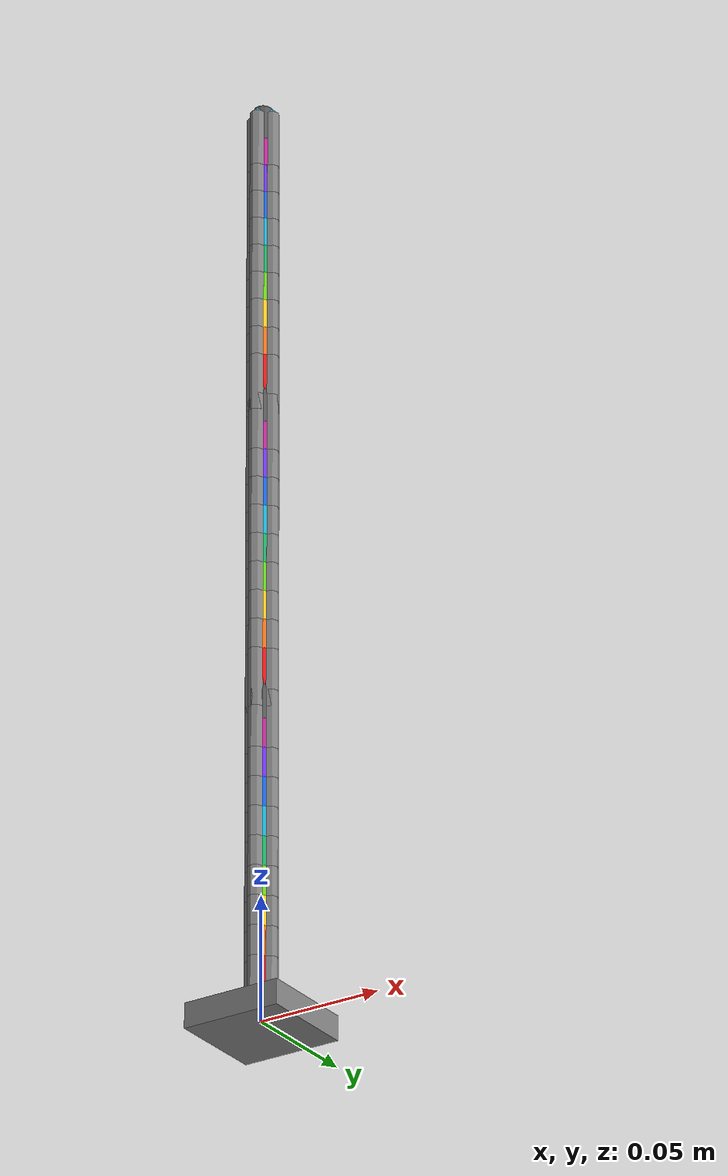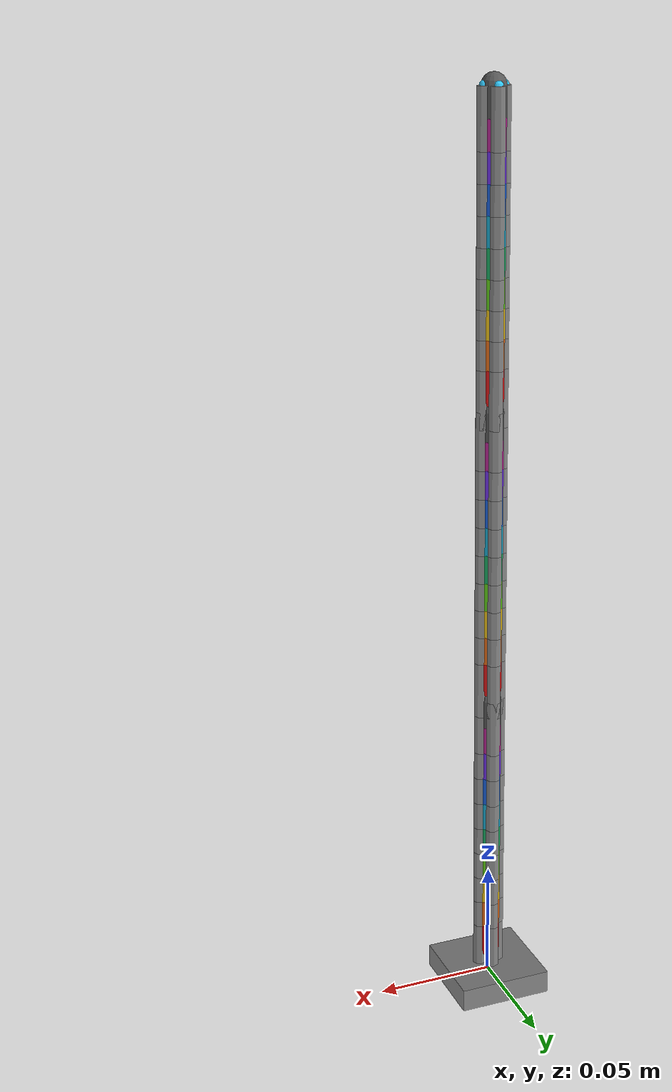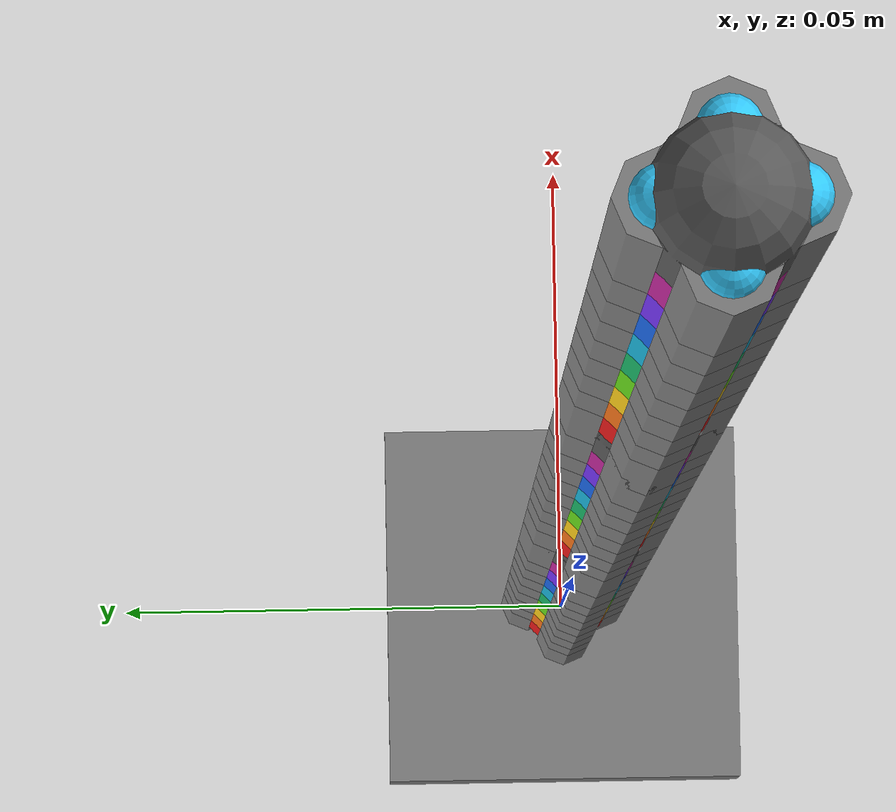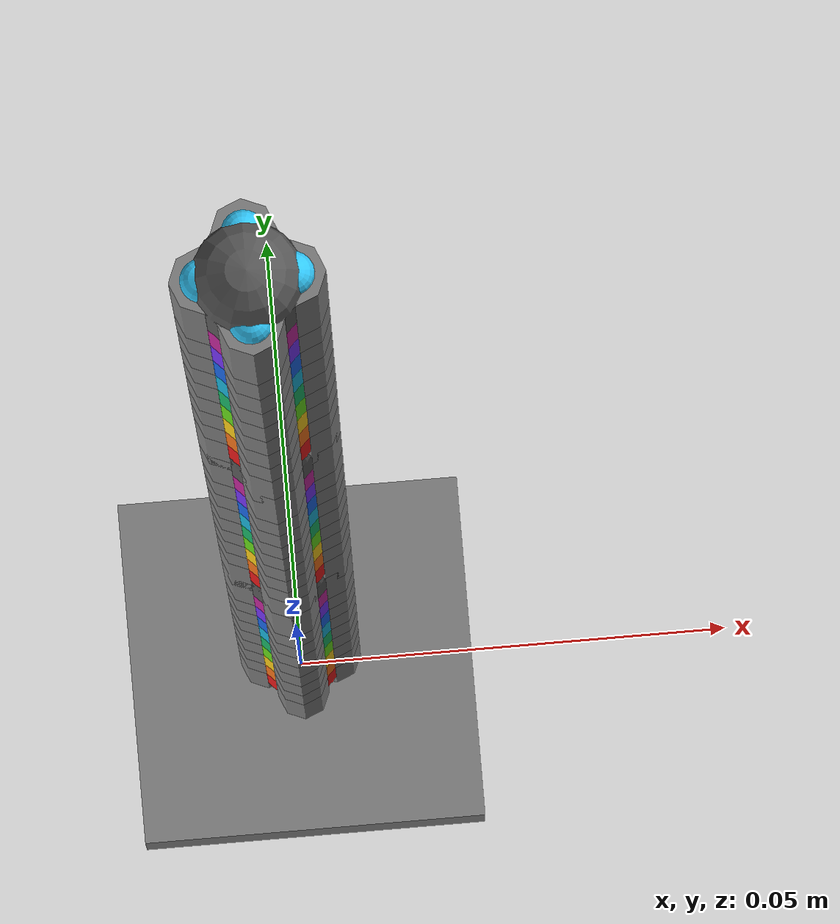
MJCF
<!-- Example File -->

<?xml version="1.0"?>
<mujoco model="continuum_sers_shell_sites">

  <compiler angle="degree" coordinate="local"/>
  <option integrator="Euler" timestep="0.001"/>

  <default>
    <joint limited="true" range="-4 4" damping="0.05" stiffness="0" armature="0.0001"/>
    <geom type="capsule" size="0.005" density="1000" friction="0.8 0.1 0.01" rgba="0.8 0.8 0.8 1"/>
    <site size="0.002" rgba="0.2 0.8 1 1"/>
    <tendon stiffness="0" damping="0" frictionloss="0.05"/>
    <position kp="5000" ctrlrange="-0.05 0.05"/>
  </default>

  <!-- spacing per vertebra interval -->
  <!-- d = 0.012 m; internal tendon offset r_in = 0.004 m -->

  <worldbody>
    <body name="base" pos="0 0 0">
      <geom type="box" size="0.02 0.02 0.005" rgba="0.5 0.5 0.5 1"/>

      <!-- ================= SEGMENT 1 ================= -->
      <body name="seg1_base" pos="0 0 0.000">
        <!-- Base internal anchors -->
        <site name="seg1_base_Ni" pos="0 0.004 0"/>
        <site name="seg1_base_Ei" pos="0.004 0 0"/>
        <site name="seg1_base_Si" pos="0 -0.004 0"/>
        <site name="seg1_base_Wi" pos="-0.004 0 0"/>

        <!-- Vertebra chain V1..V10; add 4 waypoint sites at the DISTAL end of V1..V8 -->
        <body name="seg1_v1" pos="0 0 0.012">
          <geom name="seg1_v1_geom" fromto="0 0 0  0 0 0.012" rgba="0.90 0.10 0.10 1"/>
          <joint name="seg1_j1_pitch" type="hinge" axis="1 0 0"/>
          <site name="seg1_v1_Ni" pos="0 0.004 0.012"/>
          <site name="seg1_v1_Ei" pos="0.004 0 0.012"/>
          <site name="seg1_v1_Si" pos="0 -0.004 0.012"/>
          <site name="seg1_v1_Wi" pos="-0.004 0 0.012"/>

          <body name="seg1_v2" pos="0 0 0.012">
            <geom name="seg1_v2_geom" fromto="0 0 0  0 0 0.012" rgba="0.95 0.45 0.10 1"/>
            <joint name="seg1_j2_yaw" type="hinge" axis="0 1 0"/>
            <site name="seg1_v2_Ni" pos="0 0.004 0.012"/>
            <site name="seg1_v2_Ei" pos="0.004 0 0.012"/>
            <site name="seg1_v2_Si" pos="0 -0.004 0.012"/>
            <site name="seg1_v2_Wi" pos="-0.004 0 0.012"/>

            <body name="seg1_v3" pos="0 0 0.012">
              <geom name="seg1_v3_geom" fromto="0 0 0  0 0 0.012" rgba="0.98 0.80 0.10 1"/>
              <joint name="seg1_j3_pitch" type="hinge" axis="1 0 0"/>
              <site name="seg1_v3_Ni" pos="0 0.004 0.012"/>
              <site name="seg1_v3_Ei" pos="0.004 0 0.012"/>
              <site name="seg1_v3_Si" pos="0 -0.004 0.012"/>
              <site name="seg1_v3_Wi" pos="-0.004 0 0.012"/>

              <body name="seg1_v4" pos="0 0 0.012">
                <geom name="seg1_v4_geom" fromto="0 0 0  0 0 0.012" rgba="0.40 0.85 0.10 1"/>
                <joint name="seg1_j4_yaw" type="hinge" axis="0 1 0"/>
                <site name="seg1_v4_Ni" pos="0 0.004 0.012"/>
                <site name="seg1_v4_Ei" pos="0.004 0 0.012"/>
                <site name="seg1_v4_Si" pos="0 -0.004 0.012"/>
                <site name="seg1_v4_Wi" pos="-0.004 0 0.012"/>

                <body name="seg1_v5" pos="0 0 0.012">
                  <geom name="seg1_v5_geom" fromto="0 0 0  0 0 0.012" rgba="0.10 0.70 0.40 1"/>
                  <joint name="seg1_j5_pitch" type="hinge" axis="1 0 0"/>
                  <site name="seg1_v5_Ni" pos="0 0.004 0.012"/>
                  <site name="seg1_v5_Ei" pos="0.004 0 0.012"/>
                  <site name="seg1_v5_Si" pos="0 -0.004 0.012"/>
                  <site name="seg1_v5_Wi" pos="-0.004 0 0.012"/>

                  <body name="seg1_v6" pos="0 0 0.012">
                    <geom name="seg1_v6_geom" fromto="0 0 0  0 0 0.012" rgba="0.10 0.70 0.85 1"/>
                    <joint name="seg1_j6_yaw" type="hinge" axis="0 1 0"/>
                    <site name="seg1_v6_Ni" pos="0 0.004 0.012"/>
                    <site name="seg1_v6_Ei" pos="0.004 0 0.012"/>
                    <site name="seg1_v6_Si" pos="0 -0.004 0.012"/>
                    <site name="seg1_v6_Wi" pos="-0.004 0 0.012"/>

                    <body name="seg1_v7" pos="0 0 0.012">
                      <geom name="seg1_v7_geom" fromto="0 0 0  0 0 0.012" rgba="0.10 0.40 0.90 1"/>
                      <joint name="seg1_j7_pitch" type="hinge" axis="1 0 0"/>
                      <site name="seg1_v7_Ni" pos="0 0.004 0.012"/>
                      <site name="seg1_v7_Ei" pos="0.004 0 0.012"/>
                      <site name="seg1_v7_Si" pos="0 -0.004 0.012"/>
                      <site name="seg1_v7_Wi" pos="-0.004 0 0.012"/>

                      <body name="seg1_v8" pos="0 0 0.012">
                        <geom name="seg1_v8_geom" fromto="0 0 0  0 0 0.012" rgba="0.45 0.20 0.95 1"/>
                        <joint name="seg1_j8_yaw" type="hinge" axis="0 1 0"/>
                        <site name="seg1_v8_Ni" pos="0 0.004 0.012"/>
                        <site name="seg1_v8_Ei" pos="0.004 0 0.012"/>
                        <site name="seg1_v8_Si" pos="0 -0.004 0.012"/>
                        <site name="seg1_v8_Wi" pos="-0.004 0 0.012"/>

                        <body name="seg1_v9" pos="0 0 0.012">
                          <geom name="seg1_v9_geom" fromto="0 0 0  0 0 0.012" rgba="0.75 0.15 0.60 1"/>
                          <body name="seg1_v10" pos="0 0 0.012">
                            <geom name="seg1_v10_geom" fromto="0 0 0  0 0 0.012" rgba="0.35 0.35 0.35 1"/>
                            <site name="seg1_imu" pos="0 0 0.012"/>
                            <!-- internal tip anchors -->
                            <site name="seg1_tip_Ni" pos="0 0.004 0.012"/>
                            <site name="seg1_tip_Ei" pos="0.004 0 0.012"/>
                            <site name="seg1_tip_Si" pos="0 -0.004 0.012"/>
                            <site name="seg1_tip_Wi" pos="-0.004 0 0.012"/>

                            <!-- ================= SEGMENT 2 ================= -->
                            <body name="seg2_base" pos="0 0 0.005">
                              <site name="seg2_base_Ni" pos="0 0.004 0"/>
                              <site name="seg2_base_Ei" pos="0.004 0 0"/>
                              <site name="seg2_base_Si" pos="0 -0.004 0"/>
                              <site name="seg2_base_Wi" pos="-0.004 0 0"/>

                              <body name="seg2_v1" pos="0 0 0.012">
                                <geom name="seg2_v1_geom" fromto="0 0 0  0 0 0.012" rgba="0.90 0.10 0.10 1"/>
                                <joint name="seg2_j1_pitch" type="hinge" axis="1 0 0"/>
                                <site name="seg2_v1_Ni" pos="0 0.004 0.012"/>
                                <site name="seg2_v1_Ei" pos="0.004 0 0.012"/>
                                <site name="seg2_v1_Si" pos="0 -0.004 0.012"/>
                                <site name="seg2_v1_Wi" pos="-0.004 0 0.012"/>

                                <body name="seg2_v2" pos="0 0 0.012">
                                  <geom name="seg2_v2_geom" fromto="0 0 0  0 0 0.012" rgba="0.95 0.45 0.10 1"/>
                                  <joint name="seg2_j2_yaw" type="hinge" axis="0 1 0"/>
                                  <site name="seg2_v2_Ni" pos="0 0.004 0.012"/>
                                  <site name="seg2_v2_Ei" pos="0.004 0 0.012"/>
                                  <site name="seg2_v2_Si" pos="0 -0.004 0.012"/>
                                  <site name="seg2_v2_Wi" pos="-0.004 0 0.012"/>

                                  <body name="seg2_v3" pos="0 0 0.012">
                                    <geom name="seg2_v3_geom" fromto="0 0 0  0 0 0.012" rgba="0.98 0.80 0.10 1"/>
                                    <joint name="seg2_j3_pitch" type="hinge" axis="1 0 0"/>
                                    <site name="seg2_v3_Ni" pos="0 0.004 0.012"/>
                                    <site name="seg2_v3_Ei" pos="0.004 0 0.012"/>
                                    <site name="seg2_v3_Si" pos="0 -0.004 0.012"/>
                                    <site name="seg2_v3_Wi" pos="-0.004 0 0.012"/>

                                    <body name="seg2_v4" pos="0 0 0.012">
                                      <geom name="seg2_v4_geom" fromto="0 0 0  0 0 0.012" rgba="0.40 0.85 0.10 1"/>
                                      <joint name="seg2_j4_yaw" type="hinge" axis="0 1 0"/>
                                      <site name="seg2_v4_Ni" pos="0 0.004 0.012"/>
                                      <site name="seg2_v4_Ei" pos="0.004 0 0.012"/>
                                      <site name="seg2_v4_Si" pos="0 -0.004 0.012"/>
                                      <site name="seg2_v4_Wi" pos="-0.004 0 0.012"/>

                                      <body name="seg2_v5" pos="0 0 0.012">
                                        <geom name="seg2_v5_geom" fromto="0 0 0  0 0 0.012" rgba="0.10 0.70 0.40 1"/>
                                        <joint name="seg2_j5_pitch" type="hinge" axis="1 0 0"/>
                                        <site name="seg2_v5_Ni" pos="0 0.004 0.012"/>
                                        <site name="seg2_v5_Ei" pos="0.004 0 0.012"/>
                                        <site name="seg2_v5_Si" pos="0 -0.004 0.012"/>
                                        <site name="seg2_v5_Wi" pos="-0.004 0 0.012"/>

                                        <body name="seg2_v6" pos="0 0 0.012">
                                          <geom name="seg2_v6_geom" fromto="0 0 0  0 0 0.012" rgba="0.10 0.70 0.85 1"/>
                                          <joint name="seg2_j6_yaw" type="hinge" axis="0 1 0"/>
                                          <site name="seg2_v6_Ni" pos="0 0.004 0.012"/>
                                          <site name="seg2_v6_Ei" pos="0.004 0 0.012"/>
                                          <site name="seg2_v6_Si" pos="0 -0.004 0.012"/>
                                          <site name="seg2_v6_Wi" pos="-0.004 0 0.012"/>

                                          <body name="seg2_v7" pos="0 0 0.012">
                                            <geom name="seg2_v7_geom" fromto="0 0 0  0 0 0.012" rgba="0.10 0.40 0.90 1"/>
                                            <joint name="seg2_j7_pitch" type="hinge" axis="1 0 0"/>
                                            <site name="seg2_v7_Ni" pos="0 0.004 0.012"/>
                                            <site name="seg2_v7_Ei" pos="0.004 0 0.012"/>
                                            <site name="seg2_v7_Si" pos="0 -0.004 0.012"/>
                                            <site name="seg2_v7_Wi" pos="-0.004 0 0.012"/>

                                            <body name="seg2_v8" pos="0 0 0.012">
                                              <geom name="seg2_v8_geom" fromto="0 0 0  0 0 0.012" rgba="0.45 0.20 0.95 1"/>
                                              <joint name="seg2_j8_yaw" type="hinge" axis="0 1 0"/>
                                              <site name="seg2_v8_Ni" pos="0 0.004 0.012"/>
                                              <site name="seg2_v8_Ei" pos="0.004 0 0.012"/>
                                              <site name="seg2_v8_Si" pos="0 -0.004 0.012"/>
                                              <site name="seg2_v8_Wi" pos="-0.004 0 0.012"/>

                                              <body name="seg2_v9" pos="0 0 0.012">
                                                <geom name="seg2_v9_geom" fromto="0 0 0  0 0 0.012" rgba="0.75 0.15 0.60 1"/>
                                                <body name="seg2_v10" pos="0 0 0.012">
                                                  <geom name="seg2_v10_geom" fromto="0 0 0  0 0 0.012" rgba="0.35 0.35 0.35 1"/>
                                                  <site name="seg2_imu" pos="0 0 0.012"/>
                                                  <site name="seg2_tip_Ni" pos="0 0.004 0.012"/>
                                                  <site name="seg2_tip_Ei" pos="0.004 0 0.012"/>
                                                  <site name="seg2_tip_Si" pos="0 -0.004 0.012"/>
                                                  <site name="seg2_tip_Wi" pos="-0.004 0 0.012"/>

                                                  <!-- ================= SEGMENT 3 ================= -->
                                                  <body name="seg3_base" pos="0 0 0.005">
                                                    <site name="seg3_base_Ni" pos="0 0.004 0"/>
                                                    <site name="seg3_base_Ei" pos="0.004 0 0"/>
                                                    <site name="seg3_base_Si" pos="0 -0.004 0"/>
                                                    <site name="seg3_base_Wi" pos="-0.004 0 0"/>

                                                    <body name="seg3_v1" pos="0 0 0.012">
                                                      <geom name="seg3_v1_geom" fromto="0 0 0  0 0 0.012" rgba="0.90 0.10 0.10 1"/>
                                                      <joint name="seg3_j1_pitch" type="hinge" axis="1 0 0"/>
                                                      <site name="seg3_v1_Ni" pos="0 0.004 0.012"/>
                                                      <site name="seg3_v1_Ei" pos="0.004 0 0.012"/>
                                                      <site name="seg3_v1_Si" pos="0 -0.004 0.012"/>
                                                      <site name="seg3_v1_Wi" pos="-0.004 0 0.012"/>

                                                      <body name="seg3_v2" pos="0 0 0.012">
                                                        <geom name="seg3_v2_geom" fromto="0 0 0  0 0 0.012" rgba="0.95 0.45 0.10 1"/>
                                                        <joint name="seg3_j2_yaw" type="hinge" axis="0 1 0"/>
                                                        <site name="seg3_v2_Ni" pos="0 0.004 0.012"/>
                                                        <site name="seg3_v2_Ei" pos="0.004 0 0.012"/>
                                                        <site name="seg3_v2_Si" pos="0 -0.004 0.012"/>
                                                        <site name="seg3_v2_Wi" pos="-0.004 0 0.012"/>

                                                        <body name="seg3_v3" pos="0 0 0.012">
                                                          <geom name="seg3_v3_geom" fromto="0 0 0  0 0 0.012" rgba="0.98 0.80 0.10 1"/>
                                                          <joint name="seg3_j3_pitch" type="hinge" axis="1 0 0"/>
                                                          <site name="seg3_v3_Ni" pos="0 0.004 0.012"/>
                                                          <site name="seg3_v3_Ei" pos="0.004 0 0.012"/>
                                                          <site name="seg3_v3_Si" pos="0 -0.004 0.012"/>
                                                          <site name="seg3_v3_Wi" pos="-0.004 0 0.012"/>

                                                          <body name="seg3_v4" pos="0 0 0.012">
                                                            <geom name="seg3_v4_geom" fromto="0 0 0  0 0 0.012" rgba="0.40 0.85 0.10 1"/>
                                                            <joint name="seg3_j4_yaw" type="hinge" axis="0 1 0"/>
                                                            <site name="seg3_v4_Ni" pos="0 0.004 0.012"/>
                                                            <site name="seg3_v4_Ei" pos="0.004 0 0.012"/>
                                                            <site name="seg3_v4_Si" pos="0 -0.004 0.012"/>
                                                            <site name="seg3_v4_Wi" pos="-0.004 0 0.012"/>

                                                            <body name="seg3_v5" pos="0 0 0.012">
                                                              <geom name="seg3_v5_geom" fromto="0 0 0  0 0 0.012" rgba="0.10 0.70 0.40 1"/>
                                                              <joint name="seg3_j5_pitch" type="hinge" axis="1 0 0"/>
                                                              <site name="seg3_v5_Ni" pos="0 0.004 0.012"/>
                                                              <site name="seg3_v5_Ei" pos="0.004 0 0.012"/>
                                                              <site name="seg3_v5_Si" pos="0 -0.004 0.012"/>
                                                              <site name="seg3_v5_Wi" pos="-0.004 0 0.012"/>

                                                              <body name="seg3_v6" pos="0 0 0.012">
                                                                <geom name="seg3_v6_geom" fromto="0 0 0  0 0 0.012" rgba="0.10 0.70 0.85 1"/>
                                                                <joint name="seg3_j6_yaw" type="hinge" axis="0 1 0"/>
                                                                <site name="seg3_v6_Ni" pos="0 0.004 0.012"/>
                                                                <site name="seg3_v6_Ei" pos="0.004 0 0.012"/>
                                                                <site name="seg3_v6_Si" pos="0 -0.004 0.012"/>
                                                                <site name="seg3_v6_Wi" pos="-0.004 0 0.012"/>

                                                                <body name="seg3_v7" pos="0 0 0.012">
                                                                  <geom name="seg3_v7_geom" fromto="0 0 0  0 0 0.012" rgba="0.10 0.40 0.90 1"/>
                                                                  <joint name="seg3_j7_pitch" type="hinge" axis="1 0 0"/>
                                                                  <site name="seg3_v7_Ni" pos="0 0.004 0.012"/>
                                                                  <site name="seg3_v7_Ei" pos="0.004 0 0.012"/>
                                                                  <site name="seg3_v7_Si" pos="0 -0.004 0.012"/>
                                                                  <site name="seg3_v7_Wi" pos="-0.004 0 0.012"/>

                                                                  <body name="seg3_v8" pos="0 0 0.012">
                                                                    <geom name="seg3_v8_geom" fromto="0 0 0  0 0 0.012" rgba="0.45 0.20 0.95 1"/>
                                                                    <joint name="seg3_j8_yaw" type="hinge" axis="0 1 0"/>
                                                                    <site name="seg3_v8_Ni" pos="0 0.004 0.012"/>
                                                                    <site name="seg3_v8_Ei" pos="0.004 0 0.012"/>
                                                                    <site name="seg3_v8_Si" pos="0 -0.004 0.012"/>
                                                                    <site name="seg3_v8_Wi" pos="-0.004 0 0.012"/>

                                                                    <body name="seg3_v9" pos="0 0 0.012">
                                                                      <geom name="seg3_v9_geom" fromto="0 0 0  0 0 0.012" rgba="0.75 0.15 0.60 1"/>
                                                                      <body name="seg3_v10" pos="0 0 0.012">
                                                                        <geom name="seg3_v10_geom" fromto="0 0 0  0 0 0.012" rgba="0.35 0.35 0.35 1"/>
                                                                        <site name="seg3_imu" pos="0 0 0.012"/>
                                                                        <site name="tip_site" pos="0 0 0.012"/>
                                                                        <geom name="tip_sphere" type="sphere" size="0.0025" pos="0 0 0.012" rgba="0.9 0.2 0.2 1"/>
                                                                        <site name="seg3_tip_Ni" pos="0 0.004 0.012"/>
                                                                        <site name="seg3_tip_Ei" pos="0.004 0 0.012"/>
                                                                        <site name="seg3_tip_Si" pos="0 -0.004 0.012"/>
                                                                        <site name="seg3_tip_Wi" pos="-0.004 0 0.012"/>
                                                                      </body>
                                                                    </body>
                                                                  </body>
                                                                </body>
                                                              </body>
                                                            </body>
                                                          </body>
                                                        </body>
                                                      </body>
                                                    </body>
                                                  </body>
                                                </body>
                                              </body>
                                            </body>
                                          </body>
                                        </body>
                                      </body>
                                    </body>
                                  </body>
                                </body>
                              </body>

                            </body>
                          </body>
                        </body>

                      </body>
                    </body>
                  </body>
                </body>
              </body>
            </body>
          </body>
        </body>
      </body>
    </body>
  </worldbody>

  <!-- ================= TENDONS (sites only; valid bracketing) ================= -->
  <tendon>
    <!-- Segment 1 -->
    <spatial name="t_seg1_N">
      <site site="seg1_base_Ni"/>
      <site site="seg1_v1_Ni"/><site site="seg1_v2_Ni"/><site site="seg1_v3_Ni"/><site site="seg1_v4_Ni"/>
      <site site="seg1_v5_Ni"/><site site="seg1_v6_Ni"/><site site="seg1_v7_Ni"/><site site="seg1_v8_Ni"/>
      <site site="seg1_tip_Ni"/>
    </spatial>
    <spatial name="t_seg1_E">
      <site site="seg1_base_Ei"/>
      <site site="seg1_v1_Ei"/><site site="seg1_v2_Ei"/><site site="seg1_v3_Ei"/><site site="seg1_v4_Ei"/>
      <site site="seg1_v5_Ei"/><site site="seg1_v6_Ei"/><site site="seg1_v7_Ei"/><site site="seg1_v8_Ei"/>
      <site site="seg1_tip_Ei"/>
    </spatial>
    <spatial name="t_seg1_S">
      <site site="seg1_base_Si"/>
      <site site="seg1_v1_Si"/><site site="seg1_v2_Si"/><site site="seg1_v3_Si"/><site site="seg1_v4_Si"/>
      <site site="seg1_v5_Si"/><site site="seg1_v6_Si"/><site site="seg1_v7_Si"/><site site="seg1_v8_Si"/>
      <site site="seg1_tip_Si"/>
    </spatial>
    <spatial name="t_seg1_W">
      <site site="seg1_base_Wi"/>
      <site site="seg1_v1_Wi"/><site site="seg1_v2_Wi"/><site site="seg1_v3_Wi"/><site site="seg1_v4_Wi"/>
      <site site="seg1_v5_Wi"/><site site="seg1_v6_Wi"/><site site="seg1_v7_Wi"/><site site="seg1_v8_Wi"/>
      <site site="seg1_tip_Wi"/>
    </spatial>

    <!-- Segment 2 -->
    <spatial name="t_seg2_N">
      <site site="seg2_base_Ni"/>
      <site site="seg2_v1_Ni"/><site site="seg2_v2_Ni"/><site site="seg2_v3_Ni"/><site site="seg2_v4_Ni"/>
      <site site="seg2_v5_Ni"/><site site="seg2_v6_Ni"/><site site="seg2_v7_Ni"/><site site="seg2_v8_Ni"/>
      <site site="seg2_tip_Ni"/>
    </spatial>
    <spatial name="t_seg2_E">
      <site site="seg2_base_Ei"/>
      <site site="seg2_v1_Ei"/><site site="seg2_v2_Ei"/><site site="seg2_v3_Ei"/><site site="seg2_v4_Ei"/>
      <site site="seg2_v5_Ei"/><site site="seg2_v6_Ei"/><site site="seg2_v7_Ei"/><site site="seg2_v8_Ei"/>
      <site site="seg2_tip_Ei"/>
    </spatial>
    <spatial name="t_seg2_S">
      <site site="seg2_base_Si"/>
      <site site="seg2_v1_Si"/><site site="seg2_v2_Si"/><site site="seg2_v3_Si"/><site site="seg2_v4_Si"/>
      <site site="seg2_v5_Si"/><site site="seg2_v6_Si"/><site site="seg2_v7_Si"/><site site="seg2_v8_Si"/>
      <site site="seg2_tip_Si"/>
    </spatial>
    <spatial name="t_seg2_W">
      <site site="seg2_base_Wi"/>
      <site site="seg2_v1_Wi"/><site site="seg2_v2_Wi"/><site site="seg2_v3_Wi"/><site site="seg2_v4_Wi"/>
      <site site="seg2_v5_Wi"/><site site="seg2_v6_Wi"/><site site="seg2_v7_Wi"/><site site="seg2_v8_Wi"/>
      <site site="seg2_tip_Wi"/>
    </spatial>

    <!-- Segment 3 -->
    <spatial name="t_seg3_N">
      <site site="seg3_base_Ni"/>
      <site site="seg3_v1_Ni"/><site site="seg3_v2_Ni"/><site site="seg3_v3_Ni"/><site site="seg3_v4_Ni"/>
      <site site="seg3_v5_Ni"/><site site="seg3_v6_Ni"/><site site="seg3_v7_Ni"/><site site="seg3_v8_Ni"/>
      <site site="seg3_tip_Ni"/>
    </spatial>
    <spatial name="t_seg3_E">
      <site site="seg3_base_Ei"/>
      <site site="seg3_v1_Ei"/><site site="seg3_v2_Ei"/><site site="seg3_v3_Ei"/><site site="seg3_v4_Ei"/>
      <site site="seg3_v5_Ei"/><site site="seg3_v6_Ei"/><site site="seg3_v7_Ei"/><site site="seg3_v8_Ei"/>
      <site site="seg3_tip_Ei"/>
    </spatial>
    <spatial name="t_seg3_S">
      <site site="seg3_base_Si"/>
      <site site="seg3_v1_Si"/><site site="seg3_v2_Si"/><site site="seg3_v3_Si"/><site site="seg3_v4_Si"/>
      <site site="seg3_v5_Si"/><site site="seg3_v6_Si"/><site site="seg3_v7_Si"/><site site="seg3_v8_Si"/>
      <site site="seg3_tip_Si"/>
    </spatial>
    <spatial name="t_seg3_W">
      <site site="seg3_base_Wi"/>
      <site site="seg3_v1_Wi"/><site site="seg3_v2_Wi"/><site site="seg3_v3_Wi"/><site site="seg3_v4_Wi"/>
      <site site="seg3_v5_Wi"/><site site="seg3_v6_Wi"/><site site="seg3_v7_Wi"/><site site="seg3_v8_Wi"/>
      <site site="seg3_tip_Wi"/>
    </spatial>
  </tendon>

  <!-- ================= ACTUATORS (12) ================= -->
  <actuator>
    <position name="a_seg1_N" tendon="t_seg1_N"/>
    <position name="a_seg1_E" tendon="t_seg1_E"/>
    <position name="a_seg1_S" tendon="t_seg1_S"/>
    <position name="a_seg1_W" tendon="t_seg1_W"/>
    <position name="a_seg2_N" tendon="t_seg2_N"/>
    <position name="a_seg2_E" tendon="t_seg2_E"/>
    <position name="a_seg2_S" tendon="t_seg2_S"/>
    <position name="a_seg2_W" tendon="t_seg2_W"/>
    <position name="a_seg3_N" tendon="t_seg3_N"/>
    <position name="a_seg3_E" tendon="t_seg3_E"/>
    <position name="a_seg3_S" tendon="t_seg3_S"/>
    <position name="a_seg3_W" tendon="t_seg3_W"/>
  </actuator>

  <!-- ================= SENSORS ================= -->
  <sensor>
    <framequat name="imu1_quat" objtype="site" objname="seg1_imu"/>
    <accelerometer name="imu1_acc" site="seg1_imu"/>
    <gyro name="imu1_gyro" site="seg1_imu"/>

    <framequat name="imu2_quat" objtype="site" objname="seg2_imu"/>
    <accelerometer name="imu2_acc" site="seg2_imu"/>
    <gyro name="imu2_gyro" site="seg2_imu"/>

    <framequat name="imu3_quat" objtype="site" objname="seg3_imu"/>
    <accelerometer name="imu3_acc" site="seg3_imu"/>
    <gyro name="imu3_gyro" site="seg3_imu"/>

    <touch name="tip_touch" site="tip_site"/>
  </sensor>
</mujoco>
